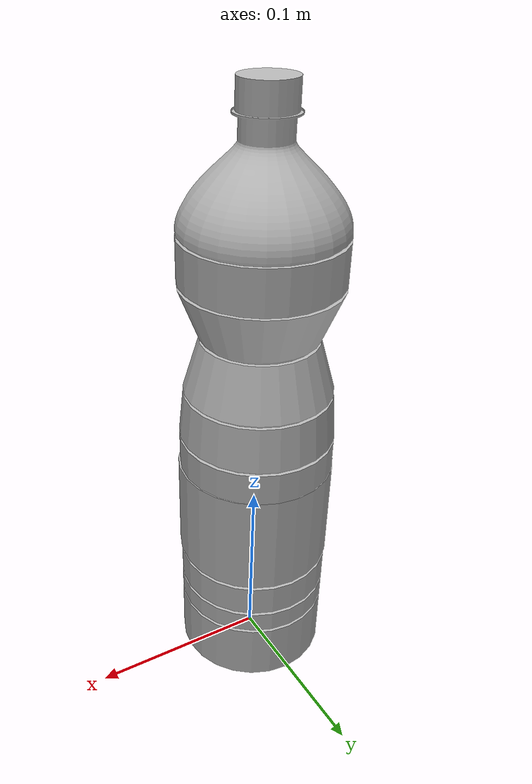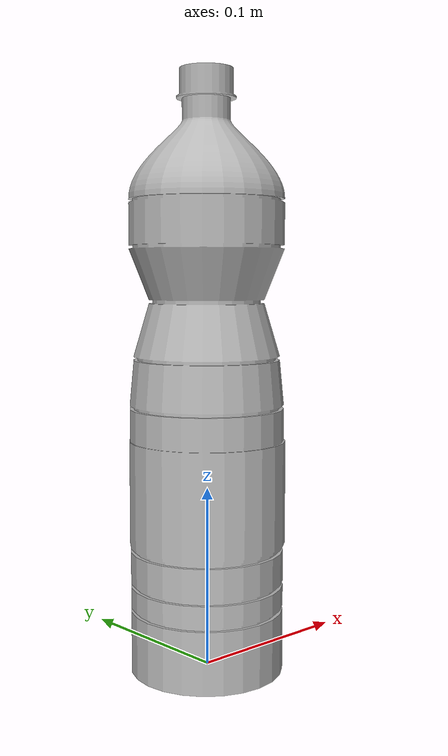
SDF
<?xml version='1.0'?>
<sdf version="1.4">
  <model name="water_bottle">
    <static>True</static>
    <link name="link">
      <inertial>
        <!-- https://en.wikipedia.org/wiki/List_of_moments_of_inertia -->
        <mass>1.5</mass> <!-- approx weight of a 1.5L filled bottle -->
        <inertia>
          <ixx>0.01185</ixx>
          <ixy>0</ixy>
          <ixz>0</ixz>
          <iyy>0.01185</iyy>
          <iyz>0</iyz>
          <izz>0.0002</izz>
        </inertia>
      </inertial>
      <collision name="collision">
        <pose>0 0 0.1525 0 0 0</pose>
        <geometry>
          <cylinder>
            <radius>0.04</radius>
            <length>0.3</length>
          </cylinder>
        </geometry>
        <surface>
          <bounce />
          <friction>
            <ode />
          </friction>
          <contact>
            <ode />
          </contact>
        </surface>
      </collision>
      <visual name="visual">
        <pose>0 0 0.1625 0 0 0</pose>
        <geometry>
          <mesh>
            <uri>model://water_bottle/mesh/model.dae</uri>
          </mesh>
        </geometry>
      </visual>
    </link>
  </model>
</sdf>
